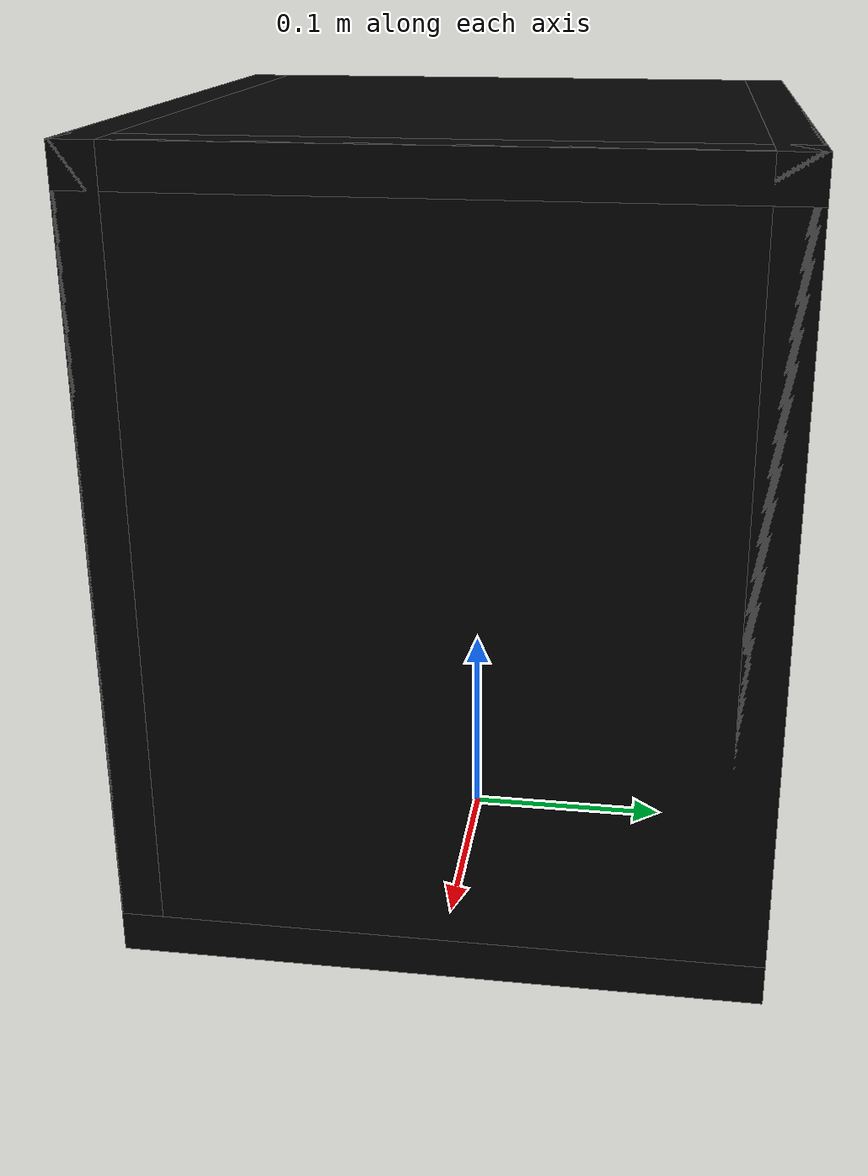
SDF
<?xml version="1.0"?>
<sdf version="1.6">
  <model name="front_open_laundry_box">
    <static>true</static>

    <link name="base">
      <visual name="bottom_visual">
        <pose>0 0 0.01 0 0 0</pose>
        <geometry><box><size>0.30 0.30 0.02</size></box></geometry>
        <material>
          <ambient>0.01 0.01 0.01 1</ambient>
          <diffuse>0.01 0.01 0.01 1</diffuse>
        </material>
      </visual>
      <collision name="bottom_collision">
        <pose>0 0 0.01 0 0 0</pose>
        <geometry><box><size>0.30 0.30 0.02</size></box></geometry>
      </collision>

      <visual name="top_visual">
        <pose>0 0 0.37 0 0 0</pose>
        <geometry><box><size>0.30 0.30 0.02</size></box></geometry>
        <material>
          <ambient>0.01 0.01 0.01 1</ambient>
          <diffuse>0.01 0.01 0.01 1</diffuse>
        </material>
      </visual>
      <collision name="top_collision">
        <pose>0 0 0.37 0 0 0</pose>
        <geometry><box><size>0.30 0.30 0.02</size></box></geometry>
      </collision>

      <visual name="back_visual">
        <pose>0.14 0 0.19 0 0 0</pose>
        <geometry><box><size>0.02 0.30 0.38</size></box></geometry>
        <material>
          <ambient>0.01 0.01 0.01 1</ambient>
          <diffuse>0.01 0.01 0.01 1</diffuse>
        </material>
      </visual>
      <collision name="back_collision">
        <pose>0.14 0 0.19 0 0 0</pose>
        <geometry><box><size>0.02 0.30 0.38</size></box></geometry>
      </collision>

      <visual name="left_visual">
        <pose>0 0.14 0.19 0 0 0</pose>
        <geometry><box><size>0.30 0.02 0.38</size></box></geometry>
        <material>
          <ambient>0.01 0.01 0.01 1</ambient>
          <diffuse>0.01 0.01 0.01 1</diffuse>
        </material>
      </visual>
      <collision name="left_collision">
        <pose>0 0.14 0.19 0 0 0</pose>
        <geometry><box><size>0.30 0.02 0.38</size></box></geometry>
      </collision>

      <visual name="right_visual">
        <pose>0 -0.14 0.19 0 0 0</pose>
        <geometry><box><size>0.30 0.02 0.38</size></box></geometry>
        <material>
          <ambient>0.01 0.01 0.01 1</ambient>
          <diffuse>0.01 0.01 0.01 1</diffuse>
        </material>
      </visual>
      <collision name="right_collision">
        <pose>0 -0.14 0.19 0 0 0</pose>
        <geometry><box><size>0.30 0.02 0.38</size></box></geometry>
      </collision>
    </link>
  </model>
</sdf>
